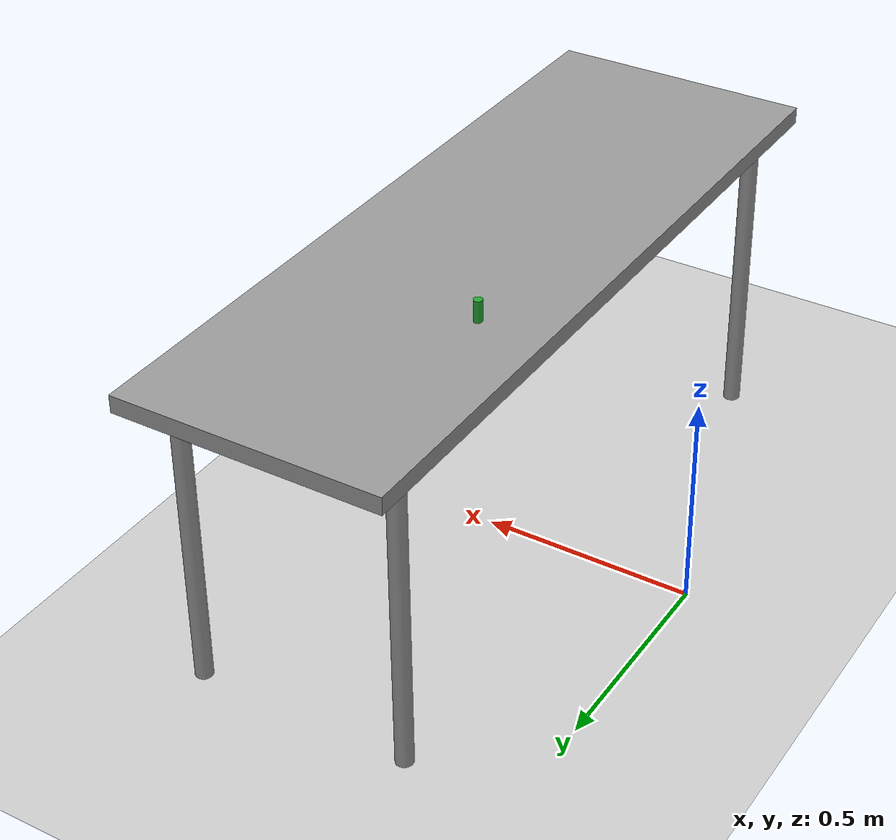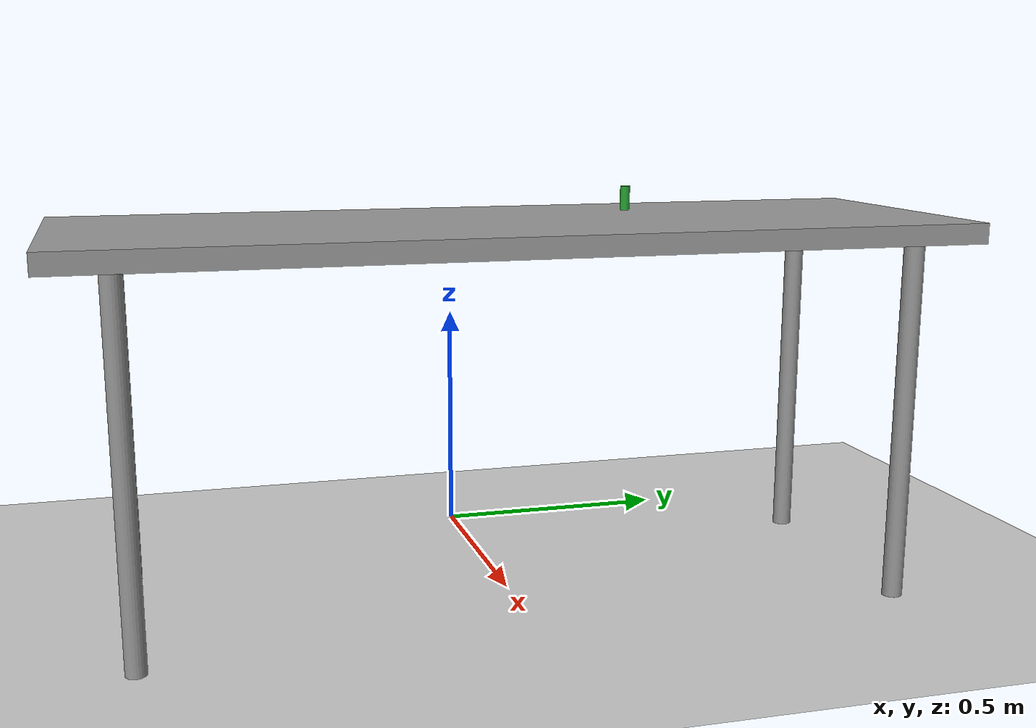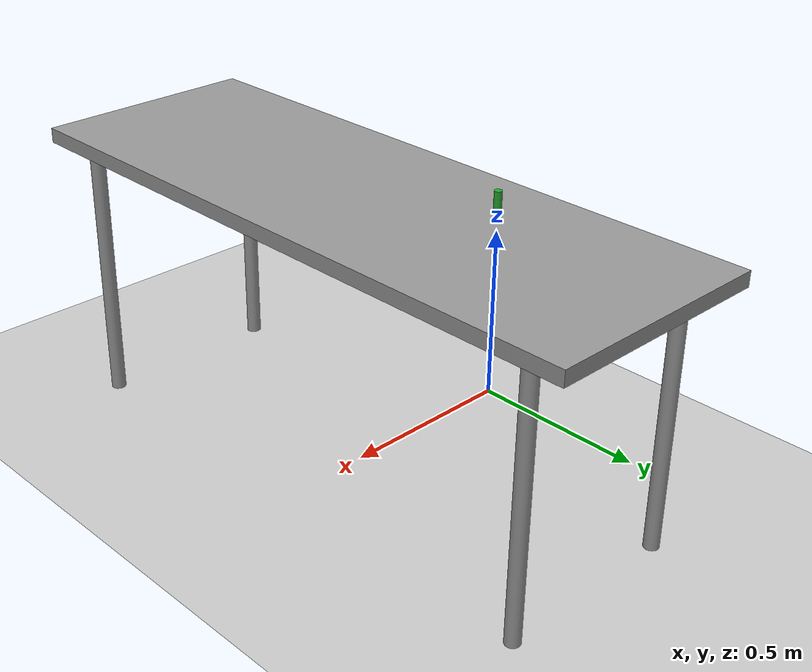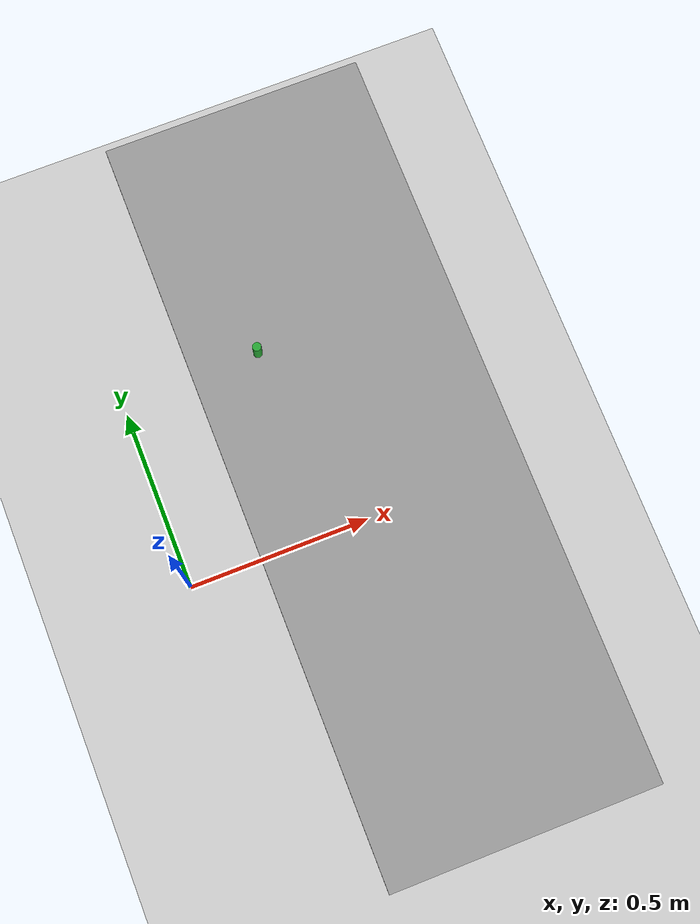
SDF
<sdf version="1.6">
 <world name="robot_base">
  <gravity>0 0 -9.81</gravity>
  <physics name="default_physics" default="0" type="ode">
   <max_step_size>0.001</max_step_size>
   <real_time_factor>1</real_time_factor>
   <real_time_update_rate>1000</real_time_update_rate>
  </physics>
  <scene><ambient>0.4 0.4 0.4 1</ambient><background>0.7 0.7 0.7 1</background><shadows>1</shadows></scene>
  <include><uri>model://sun</uri></include>
  <include><uri>model://ground_plane</uri></include>
  <model name="table"><include><uri>model://table</uri><pose>0.5 0 0 0 0 1.570796</pose></include></model>
  <model name="pin"><include><uri>model://pin</uri><pose>0.35 0.3 0.76 0 0 0</pose></include></model>
 </world>
</sdf>

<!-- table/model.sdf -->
<sdf version="1.6">
  <model name="table">
  <static>true</static>
  <link name="top_plate">
    <pose>0 0 0.74 0 0 0</pose>
    <visual name="top_plate_visual">
      <geometry>
        <box>
          <size>1.75 0.61 0.04</size>
        </box>
      </geometry>
      <material>
        <script>
          <uri>file://media/materials/scripts/gazebo.material</uri>
          <name>Gazebo/Grey</name>
        </script>
      </material>
    </visual>
    <collision name="top_plate_collision">
      <geometry>
        <box>
          <size>1.75 0.61 0.04</size>
        </box>
      </geometry>
    </collision>
  </link>
  <link name="leg1">
    <pose>0.75 0.25 0.36 0 0 1.570796</pose>
    <visual name="leg1_visual">
      <geometry>
        <cylinder>
          <radius>0.02</radius>
          <length>0.72</length>
        </cylinder>
      </geometry>
      <material>
        <script>
          <uri>file://media/materials/scripts/gazebo.material</uri>
          <name>Gazebo/Grey</name>
        </script>
      </material>
    </visual>
    <collision name="leg1_collision">
      <geometry>
        <cylinder>
          <radius>0.02</radius>
          <length>0.72</length>
        </cylinder>
      </geometry>
    </collision>
  </link>
  <link name="leg2">
    <pose>-0.75 0.25 0.36 0 0 1.570796</pose>
    <visual name="leg2_visual">
      <geometry>
        <cylinder>
          <radius>0.02</radius>
          <length>0.72</length>
        </cylinder>
      </geometry>
      <material>
        <script>
          <uri>file://media/materials/scripts/gazebo.material</uri>
          <name>Gazebo/Grey</name>
        </script>
      </material>
    </visual>
    <collision name="leg2_collision">
      <geometry>
        <cylinder>
          <radius>0.02</radius>
          <length>0.72</length>
        </cylinder>
      </geometry>
    </collision>
  </link>
  <link name="leg3">
    <pose>0.75 -0.25 0.36 0 0 1.570796</pose>
    <visual name="leg3_visual">
      <geometry>
        <cylinder>
          <radius>0.02</radius>
          <length>0.72</length>
        </cylinder>
      </geometry>
      <material>
        <script>
          <uri>file://media/materials/scripts/gazebo.material</uri>
          <name>Gazebo/Grey</name>
        </script>
      </material>
    </visual>
    <collision name="leg3_collision">
      <geometry>
        <cylinder>
          <radius>0.02</radius>
          <length>0.72</length>
        </cylinder>
      </geometry>
    </collision>
  </link>
  <link name="leg4">
    <pose>-0.75 -0.25 0.36 0 0 1.570796</pose>
    <visual name="leg4_visual">
      <geometry>
        <cylinder>
          <radius>0.02</radius>
          <length>0.72</length>
        </cylinder>
      </geometry>
      <material>
        <script>
          <uri>file://media/materials/scripts/gazebo.material</uri>
          <name>Gazebo/Grey</name>
        </script>
      </material>
    </visual>
    <collision name="leg4_collision">
      <geometry>
        <cylinder>
          <radius>0.02</radius>
          <length>0.72</length>
        </cylinder>
      </geometry>
    </collision>
  </link>
</model>

</sdf>

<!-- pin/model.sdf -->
<sdf version="1.6">
  <model name="pin">
    <link name="pin">
      <pose>0 0 0.025 0 0 0</pose>
      <collision name="pin_collision">
        <geometry>
          <cylinder>
            <radius>0.01</radius>
            <length>0.05</length>
          </cylinder>
        </geometry>
      </collision>
      <visual name="pin_visual">
        <geometry>
          <cylinder>
            <radius>0.01</radius>
            <length>0.05</length>
          </cylinder>
        </geometry>
        <material>
          <script>
            <uri>file://media/materials/scripts/gazebo.material</uri>
            <name>Gazebo/Green</name>
          </script>
        </material>
      </visual>
      <inertial>
        <mass>0.05</mass>
        <inertia>
          <ixx>0.000011666</ixx>
          <ixy>0</ixy>
          <ixz>0</ixz>
          <iyy>0.000011666</iyy>
          <iyz>0</iyz>
          <izz>0.0000025</izz>
        </inertia>
      </inertial>
    </link>
  </model>
</sdf>
